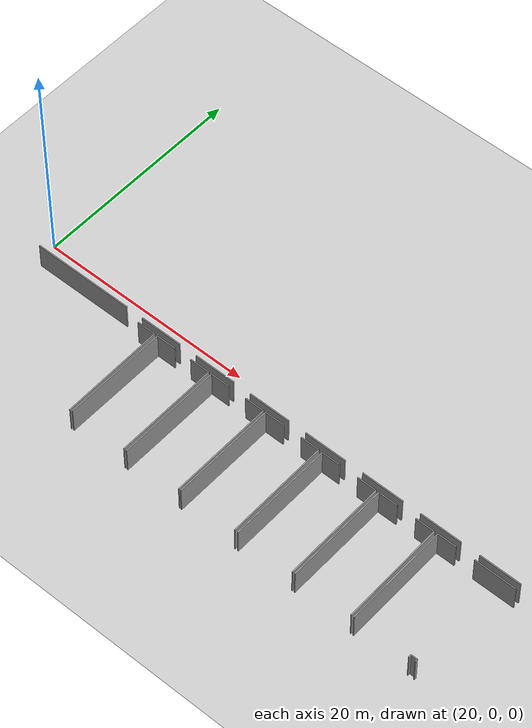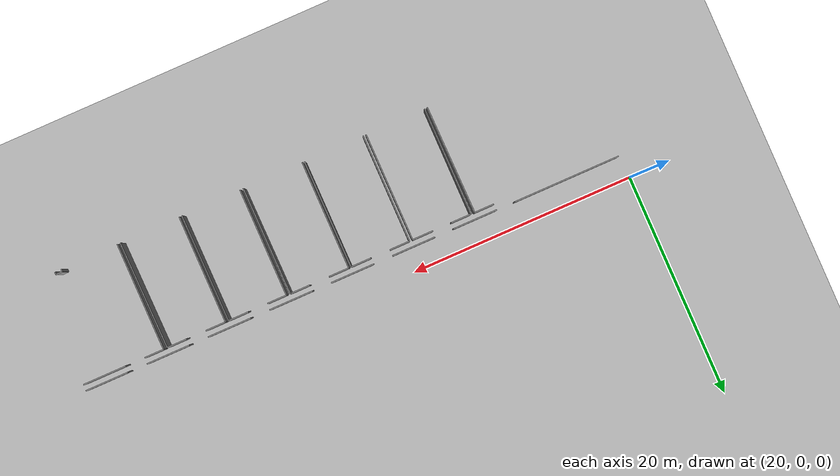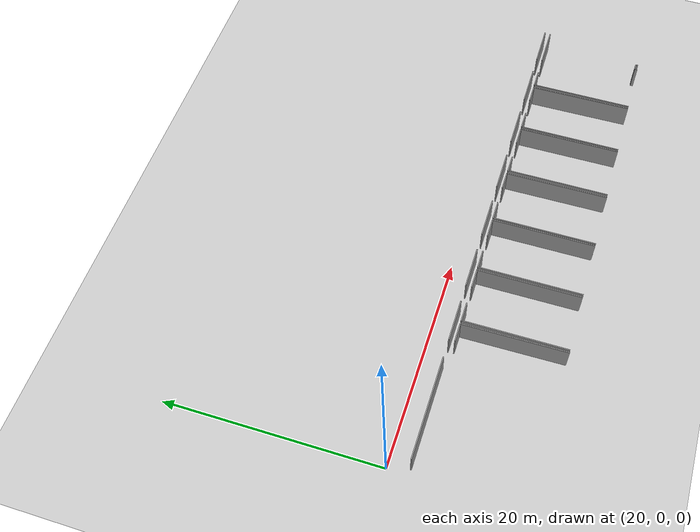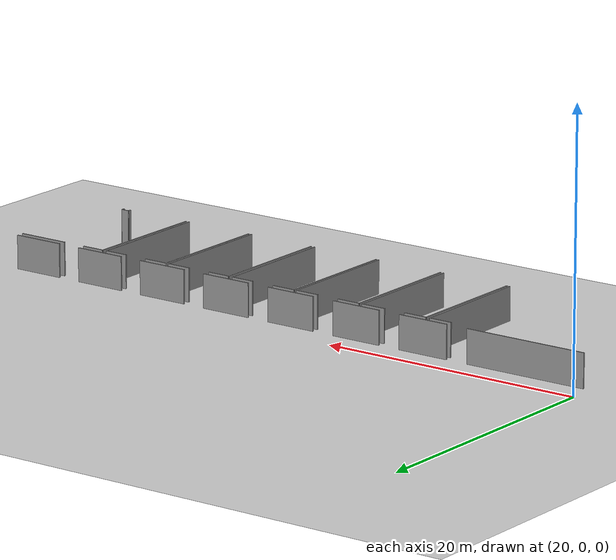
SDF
<sdf version="1.6">
 <world name="default">
  <model name="ground_plane">
   <static>1</static>
   <link name="link">
    <collision name="collision">
     <geometry><plane><normal>0 0 1</normal><size>100 100</size></plane></geometry>
     <surface><friction><ode><mu>100</mu><mu2>50</mu2></ode></friction></surface>
    </collision>
    <visual name="visual">
     <cast_shadows>0</cast_shadows>
     <geometry><plane><normal>0 0 1</normal><size>100 100</size></plane></geometry>
     <material>
      <script><uri>file://media/materials/scripts/gazebo.material</uri><name>Gazebo/Grey</name></script>
     </material>
    </visual>
   </link>
  </model>
  <model name="0510045907_A_40_1_105">
   <static>1</static>
   <link name="Wall_37">
    <collision name="Wall_37_Collision">
     <geometry><box><size>3.85117294607 0.1 2.5</size></box></geometry>
     <pose>1.92558647304 0 1.25 0 0 0</pose>
    </collision>
    <visual name="Wall_37_Visual">
     <pose>1.92558647304 0 1.25 0 0 0</pose>
     <geometry><box><size>3.85117294607 0.1 2.5</size></box></geometry>
     <material>
      <script><uri>file://media/materials/scripts/gazebo.material</uri><name>Gazebo/Grey</name></script>
      <ambient>1 1 1 1</ambient>
     </material>
    </visual>
    <pose>152.759723774 -14.2241291764 0 0 0 3.14159265359</pose>
   </link>
   <link name="Wall_38">
    <collision name="Wall_38_Collision">
     <geometry><box><size>3.86132832335 0.1 2.5</size></box></geometry>
     <pose>1.93066416167 0 1.25 0 0 0</pose>
    </collision>
    <visual name="Wall_38_Visual">
     <pose>1.93066416167 0 1.25 0 0 0</pose>
     <geometry><box><size>3.86132832335 0.1 2.5</size></box></geometry>
     <material>
      <script><uri>file://media/materials/scripts/gazebo.material</uri><name>Gazebo/Grey</name></script>
      <ambient>1 1 1 1</ambient>
     </material>
    </visual>
    <pose>147.171219661 -14.2241291764 0 0 0 3.14159265359</pose>
   </link>
   <link name="Wall_39">
    <collision name="Wall_39_Collision">
     <geometry><box><size>3.90042652585 0.1 2.5</size></box></geometry>
     <pose>1.95021326292 0 1.25 0 0 0</pose>
    </collision>
    <visual name="Wall_39_Visual">
     <pose>1.95021326292 0 1.25 0 0 0</pose>
     <geometry><box><size>3.90042652585 0.1 2.5</size></box></geometry>
     <material>
      <script><uri>file://media/materials/scripts/gazebo.material</uri><name>Gazebo/Grey</name></script>
      <ambient>1 1 1 1</ambient>
     </material>
    </visual>
    <pose>141.612927795 -14.2241291764 0 0 0 3.14159265359</pose>
   </link>
   <link name="Wall_40">
    <collision name="Wall_40_Collision">
     <geometry><box><size>3.91616736062 0.1 2.5</size></box></geometry>
     <pose>1.95808368031 0 1.25 0 0 0</pose>
    </collision>
    <visual name="Wall_40_Visual">
     <pose>1.95808368031 0 1.25 0 0 0</pose>
     <geometry><box><size>3.91616736062 0.1 2.5</size></box></geometry>
     <material>
      <script><uri>file://media/materials/scripts/gazebo.material</uri><name>Gazebo/Grey</name></script>
      <ambient>1 1 1 1</ambient>
     </material>
    </visual>
    <pose>135.995988626 -14.2241291764 0 0 0 3.14159265359</pose>
   </link>
   <link name="Wall_41">
    <collision name="Wall_41_Collision">
     <geometry><box><size>3.89027114857 0.1 2.5</size></box></geometry>
     <pose>1.94513557429 0 1.25 0 0 0</pose>
    </collision>
    <visual name="Wall_41_Visual">
     <pose>1.94513557429 0 1.25 0 0 0</pose>
     <geometry><box><size>3.89027114857 0.1 2.5</size></box></geometry>
     <material>
      <script><uri>file://media/materials/scripts/gazebo.material</uri><name>Gazebo/Grey</name></script>
      <ambient>1 1 1 1</ambient>
     </material>
    </visual>
    <pose>130.376256728 -14.2241291764 0 0 0 3.14159265359</pose>
   </link>
   <link name="Wall_42">
    <collision name="Wall_42_Collision">
     <geometry><box><size>3.87554585153 0.1 2.5</size></box></geometry>
     <pose>1.93777292576 0 1.25 0 0 0</pose>
    </collision>
    <visual name="Wall_42_Visual">
     <pose>1.93777292576 0 1.25 0 0 0</pose>
     <geometry><box><size>3.87554585153 0.1 2.5</size></box></geometry>
     <material>
      <script><uri>file://media/materials/scripts/gazebo.material</uri><name>Gazebo/Grey</name></script>
      <ambient>1 1 1 1</ambient>
     </material>
    </visual>
    <pose>124.787498731 -14.2241291764 0 0 0 3.14159265359</pose>
   </link>
   <link name="Wall_43">
    <collision name="Wall_43_Collision">
     <geometry><box><size>3.93952472834 0.1 2.5</size></box></geometry>
     <pose>1.96976236417 0 1.25 0 0 0</pose>
    </collision>
    <visual name="Wall_43_Visual">
     <pose>1.96976236417 0 1.25 0 0 0</pose>
     <geometry><box><size>3.93952472834 0.1 2.5</size></box></geometry>
     <material>
      <script><uri>file://media/materials/scripts/gazebo.material</uri><name>Gazebo/Grey</name></script>
      <ambient>1 1 1 1</ambient>
     </material>
    </visual>
    <pose>119.219305372 -14.2241291764 0 0 0 3.14159265359</pose>
   </link>
   <link name="Wall_44">
    <collision name="Wall_44_Collision">
     <geometry><box><size>9.44830912968 0.1 2.5</size></box></geometry>
     <pose>4.72415456484 0 1.25 0 0 0</pose>
    </collision>
    <visual name="Wall_44_Visual">
     <pose>4.72415456484 0 1.25 0 0 0</pose>
     <geometry><box><size>9.44830912968 0.1 2.5</size></box></geometry>
     <material>
      <script><uri>file://media/materials/scripts/gazebo.material</uri><name>Gazebo/Grey</name></script>
      <ambient>1 1 1 1</ambient>
     </material>
    </visual>
    <pose>113.61023662 -14.2241291764 0 0 0 3.14159265359</pose>
   </link>
   <link name="Wall_141">
    <collision name="Wall_141_Collision">
     <geometry><box><size>1.74672489083 0.1 2.5</size></box></geometry>
     <pose>0.873362445415 0 1.25 0 0 0</pose>
    </collision>
    <visual name="Wall_141_Visual">
     <pose>0.873362445415 0 1.25 0 0 0</pose>
     <geometry><box><size>1.74672489083 0.1 2.5</size></box></geometry>
     <material>
      <script><uri>file://media/materials/scripts/gazebo.material</uri><name>Gazebo/Grey</name></script>
      <ambient>1 1 1 1</ambient>
     </material>
    </visual>
    <pose>115.316086118 -14.7621102874 0 0 0 0.0</pose>
   </link>
   <link name="Wall_142">
    <collision name="Wall_142_Collision">
     <geometry><box><size>9.63632781156 0.1 2.5</size></box></geometry>
     <pose>4.81816390578 0 1.25 0 0 0</pose>
    </collision>
    <visual name="Wall_142_Visual">
     <pose>4.81816390578 0 1.25 0 0 0</pose>
     <geometry><box><size>9.63632781156 0.1 2.5</size></box></geometry>
     <material>
      <script><uri>file://media/materials/scripts/gazebo.material</uri><name>Gazebo/Grey</name></script>
      <ambient>1 1 1 1</ambient>
     </material>
    </visual>
    <pose>117.062811008 -14.7621102874 0 0 0 -1.56170662615</pose>
   </link>
   <link name="Wall_143">
    <collision name="Wall_143_Collision">
     <geometry><box><size>9.60394028638 0.1 2.5</size></box></geometry>
     <pose>4.80197014319 0 1.25 0 0 0</pose>
    </collision>
    <visual name="Wall_143_Visual">
     <pose>4.80197014319 0 1.25 0 0 0</pose>
     <geometry><box><size>9.60394028638 0.1 2.5</size></box></geometry>
     <material>
      <script><uri>file://media/materials/scripts/gazebo.material</uri><name>Gazebo/Grey</name></script>
      <ambient>1 1 1 1</ambient>
     </material>
    </visual>
    <pose>117.377627704 -24.3721438001 0 0 0 1.57079632679</pose>
   </link>
   <link name="Wall_144">
    <collision name="Wall_144_Collision">
     <geometry><box><size>1.81349649639 0.1 2.5</size></box></geometry>
     <pose>0.906748248197 0 1.25 0 0 0</pose>
    </collision>
    <visual name="Wall_144_Visual">
     <pose>0.906748248197 0 1.25 0 0 0</pose>
     <geometry><box><size>1.81349649639 0.1 2.5</size></box></geometry>
     <material>
      <script><uri>file://media/materials/scripts/gazebo.material</uri><name>Gazebo/Grey</name></script>
      <ambient>1 1 1 1</ambient>
     </material>
    </visual>
    <pose>117.377627704 -14.7682035138 0 0 0 0.0</pose>
   </link>
   <link name="Wall_145">
    <collision name="Wall_145_Collision">
     <geometry><box><size>1.86960495582 0.1 2.5</size></box></geometry>
     <pose>0.934802477912 0 1.25 0 0 0</pose>
    </collision>
    <visual name="Wall_145_Visual">
     <pose>0.934802477912 0 1.25 0 0 0</pose>
     <geometry><box><size>1.86960495582 0.1 2.5</size></box></geometry>
     <material>
      <script><uri>file://media/materials/scripts/gazebo.material</uri><name>Gazebo/Grey</name></script>
      <ambient>1 1 1 1</ambient>
     </material>
    </visual>
    <pose>120.855336651 -14.7682035138 0 0 0 0.0</pose>
   </link>
   <link name="Wall_146">
    <collision name="Wall_146_Collision">
     <geometry><box><size>9.60395490412 0.1 2.5</size></box></geometry>
     <pose>4.80197745206 0 1.25 0 0 0</pose>
    </collision>
    <visual name="Wall_146_Visual">
     <pose>4.80197745206 0 1.25 0 0 0</pose>
     <geometry><box><size>9.60395490412 0.1 2.5</size></box></geometry>
     <material>
      <script><uri>file://media/materials/scripts/gazebo.material</uri><name>Gazebo/Grey</name></script>
      <ambient>1 1 1 1</ambient>
     </material>
    </visual>
    <pose>122.724941607 -14.7682035138 0 0 0 -1.56905158922</pose>
   </link>
   <link name="Wall_147">
    <collision name="Wall_147_Collision">
     <geometry><box><size>9.61460343252 0.1 2.5</size></box></geometry>
     <pose>4.80730171626 0 1.25 0 0 0</pose>
    </collision>
    <visual name="Wall_147_Visual">
     <pose>4.80730171626 0 1.25 0 0 0</pose>
     <geometry><box><size>9.61460343252 0.1 2.5</size></box></geometry>
     <material>
      <script><uri>file://media/materials/scripts/gazebo.material</uri><name>Gazebo/Grey</name></script>
      <ambient>1 1 1 1</ambient>
     </material>
    </visual>
    <pose>123.002183406 -24.3815375241 0 0 0 1.57079632679</pose>
   </link>
   <link name="Wall_148">
    <collision name="Wall_148_Collision">
     <geometry><box><size>1.7848075556 0.1 2.5</size></box></geometry>
     <pose>0.8924037778 0 1.25 0 0 0</pose>
    </collision>
    <visual name="Wall_148_Visual">
     <pose>0.8924037778 0 1.25 0 0 0</pose>
     <geometry><box><size>1.7848075556 0.1 2.5</size></box></geometry>
     <material>
      <script><uri>file://media/materials/scripts/gazebo.material</uri><name>Gazebo/Grey</name></script>
      <ambient>1 1 1 1</ambient>
     </material>
    </visual>
    <pose>123.002183406 -14.7669340916 0 0 0 0.0</pose>
   </link>
   <link name="Wall_149">
    <collision name="Wall_149_Collision">
     <geometry><box><size>1.81451203412 0.1 2.5</size></box></geometry>
     <pose>0.907256017061 0 1.25 0 0 0</pose>
    </collision>
    <visual name="Wall_149_Visual">
     <pose>0.907256017061 0 1.25 0 0 0</pose>
     <geometry><box><size>1.81451203412 0.1 2.5</size></box></geometry>
     <material>
      <script><uri>file://media/materials/scripts/gazebo.material</uri><name>Gazebo/Grey</name></script>
      <ambient>1 1 1 1</ambient>
     </material>
    </visual>
    <pose>126.500456992 -14.7669340916 0 0 0 0.0</pose>
   </link>
   <link name="Wall_150">
    <collision name="Wall_150_Collision">
     <geometry><box><size>9.61461432333 0.1 2.5</size></box></geometry>
     <pose>4.80730716166 0 1.25 0 0 0</pose>
    </collision>
    <visual name="Wall_150_Visual">
     <pose>4.80730716166 0 1.25 0 0 0</pose>
     <geometry><box><size>9.61461432333 0.1 2.5</size></box></geometry>
     <material>
      <script><uri>file://media/materials/scripts/gazebo.material</uri><name>Gazebo/Grey</name></script>
      <ambient>1 1 1 1</ambient>
     </material>
    </visual>
    <pose>128.314969026 -14.7669340916 0 0 0 -1.56929117874</pose>
   </link>
   <link name="Wall_151">
    <collision name="Wall_151_Collision">
     <geometry><box><size>9.63389864933 0.1 2.5</size></box></geometry>
     <pose>4.81694932467 0 1.25 0 0 0</pose>
    </collision>
    <visual name="Wall_151_Visual">
     <pose>4.81694932467 0 1.25 0 0 0</pose>
     <geometry><box><size>9.63389864933 0.1 2.5</size></box></geometry>
     <material>
      <script><uri>file://media/materials/scripts/gazebo.material</uri><name>Gazebo/Grey</name></script>
      <ambient>1 1 1 1</ambient>
     </material>
    </visual>
    <pose>128.532801869 -24.3960089367 0 0 0 1.57079632679</pose>
   </link>
   <link name="Wall_152">
    <collision name="Wall_152_Collision">
     <geometry><box><size>1.80486442571 0.1 2.5</size></box></geometry>
     <pose>0.902432212857 0 1.25 0 0 0</pose>
    </collision>
    <visual name="Wall_152_Visual">
     <pose>0.902432212857 0 1.25 0 0 0</pose>
     <geometry><box><size>1.80486442571 0.1 2.5</size></box></geometry>
     <material>
      <script><uri>file://media/materials/scripts/gazebo.material</uri><name>Gazebo/Grey</name></script>
      <ambient>1 1 1 1</ambient>
     </material>
    </visual>
    <pose>128.532801869 -14.7621102874 0 0 0 0.0</pose>
   </link>
   <link name="Wall_153">
    <collision name="Wall_153_Collision">
     <geometry><box><size>1.75637249924 0.1 2.5</size></box></geometry>
     <pose>0.878186249619 0 1.25 0 0 0</pose>
    </collision>
    <visual name="Wall_153_Visual">
     <pose>0.878186249619 0 1.25 0 0 0</pose>
     <geometry><box><size>1.75637249924 0.1 2.5</size></box></geometry>
     <material>
      <script><uri>file://media/materials/scripts/gazebo.material</uri><name>Gazebo/Grey</name></script>
      <ambient>1 1 1 1</ambient>
     </material>
    </visual>
    <pose>132.10470194 -14.7621102874 0 0 0 0.0</pose>
   </link>
   <link name="Wall_154">
    <collision name="Wall_154_Collision">
     <geometry><box><size>9.63406800561 0.1 2.5</size></box></geometry>
     <pose>4.8170340028 0 1.25 0 0 0</pose>
    </collision>
    <visual name="Wall_154_Visual">
     <pose>4.8170340028 0 1.25 0 0 0</pose>
     <geometry><box><size>9.63406800561 0.1 2.5</size></box></geometry>
     <material>
      <script><uri>file://media/materials/scripts/gazebo.material</uri><name>Gazebo/Grey</name></script>
      <ambient>1 1 1 1</ambient>
     </material>
    </visual>
    <pose>133.861074439 -14.7621102874 0 0 0 -1.56486691755</pose>
   </link>
   <link name="Wall_155">
    <collision name="Wall_155_Collision">
     <geometry><box><size>9.60495582411 0.1 2.5</size></box></geometry>
     <pose>4.80247791205 0 1.25 0 0 0</pose>
    </collision>
    <visual name="Wall_155_Visual">
     <pose>4.80247791205 0 1.25 0 0 0</pose>
     <geometry><box><size>9.60495582411 0.1 2.5</size></box></geometry>
     <material>
      <script><uri>file://media/materials/scripts/gazebo.material</uri><name>Gazebo/Grey</name></script>
      <ambient>1 1 1 1</ambient>
     </material>
    </visual>
    <pose>134.214227684 -24.3889001726 0 0 0 1.57079632679</pose>
   </link>
   <link name="Wall_156">
    <collision name="Wall_156_Collision">
     <geometry><box><size>1.72133644765 0.1 2.5</size></box></geometry>
     <pose>0.860668223825 0 1.25 0 0 0</pose>
    </collision>
    <visual name="Wall_156_Visual">
     <pose>0.860668223825 0 1.25 0 0 0</pose>
     <geometry><box><size>1.72133644765 0.1 2.5</size></box></geometry>
     <material>
      <script><uri>file://media/materials/scripts/gazebo.material</uri><name>Gazebo/Grey</name></script>
      <ambient>1 1 1 1</ambient>
     </material>
    </visual>
    <pose>134.214227684 -14.7839443485 0 0 0 0.0</pose>
   </link>
   <link name="Wall_157">
    <collision name="Wall_157_Collision">
     <geometry><box><size>1.80283335026 0.1 2.5</size></box></geometry>
     <pose>0.901416675129 0 1.25 0 0 0</pose>
    </collision>
    <visual name="Wall_157_Visual">
     <pose>0.901416675129 0 1.25 0 0 0</pose>
     <geometry><box><size>1.80283335026 0.1 2.5</size></box></geometry>
     <material>
      <script><uri>file://media/materials/scripts/gazebo.material</uri><name>Gazebo/Grey</name></script>
      <ambient>1 1 1 1</ambient>
     </material>
    </visual>
    <pose>137.69879151 -14.7839443485 0 0 0 0.0</pose>
   </link>
   <link name="Wall_158">
    <collision name="Wall_158_Collision">
     <geometry><box><size>9.60501428875 0.1 2.5</size></box></geometry>
     <pose>4.80250714438 0 1.25 0 0 0</pose>
    </collision>
    <visual name="Wall_158_Visual">
     <pose>4.80250714438 0 1.25 0 0 0</pose>
     <geometry><box><size>9.60501428875 0.1 2.5</size></box></geometry>
     <material>
      <script><uri>file://media/materials/scripts/gazebo.material</uri><name>Gazebo/Grey</name></script>
      <ambient>1 1 1 1</ambient>
     </material>
    </visual>
    <pose>139.50162486 -14.7839443485 0 0 0 -1.56730723121</pose>
   </link>
   <link name="Wall_159">
    <collision name="Wall_159_Collision">
     <geometry><box><size>9.58566060729 0.1 2.5</size></box></geometry>
     <pose>4.79283030365 0 1.25 0 0 0</pose>
    </collision>
    <visual name="Wall_159_Visual">
     <pose>4.79283030365 0 1.25 0 0 0</pose>
     <geometry><box><size>9.58566060729 0.1 2.5</size></box></geometry>
     <material>
      <script><uri>file://media/materials/scripts/gazebo.material</uri><name>Gazebo/Grey</name></script>
      <ambient>1 1 1 1</ambient>
     </material>
    </visual>
    <pose>139.767949629 -24.3721438001 0 0 0 1.57079632679</pose>
   </link>
   <link name="Wall_160">
    <collision name="Wall_160_Collision">
     <geometry><box><size>1.80004062151 0.1 2.5</size></box></geometry>
     <pose>0.900020310755 0 1.25 0 0 0</pose>
    </collision>
    <visual name="Wall_160_Visual">
     <pose>0.900020310755 0 1.25 0 0 0</pose>
     <geometry><box><size>1.80004062151 0.1 2.5</size></box></geometry>
     <material>
      <script><uri>file://media/materials/scripts/gazebo.material</uri><name>Gazebo/Grey</name></script>
      <ambient>1 1 1 1</ambient>
     </material>
    </visual>
    <pose>139.767949629 -14.7864831929 0 0 0 0.0</pose>
   </link>
   <link name="Wall_161">
    <collision name="Wall_161_Collision">
     <geometry><box><size>1.75662638367 0.1 2.5</size></box></geometry>
     <pose>0.878313191835 0 1.25 0 0 0</pose>
    </collision>
    <visual name="Wall_161_Visual">
     <pose>0.878313191835 0 1.25 0 0 0</pose>
     <geometry><box><size>1.75662638367 0.1 2.5</size></box></geometry>
     <material>
      <script><uri>file://media/materials/scripts/gazebo.material</uri><name>Gazebo/Grey</name></script>
      <ambient>1 1 1 1</ambient>
     </material>
    </visual>
    <pose>143.32436275 -14.7864831929 0 0 0 0.0</pose>
   </link>
   <link name="Wall_162">
    <collision name="Wall_162_Collision">
     <geometry><box><size>9.5859920984 0.1 2.5</size></box></geometry>
     <pose>4.7929960492 0 1.25 0 0 0</pose>
    </collision>
    <visual name="Wall_162_Visual">
     <pose>4.7929960492 0 1.25 0 0 0</pose>
     <geometry><box><size>9.5859920984 0.1 2.5</size></box></geometry>
     <material>
      <script><uri>file://media/materials/scripts/gazebo.material</uri><name>Gazebo/Grey</name></script>
      <ambient>1 1 1 1</ambient>
     </material>
    </visual>
    <pose>145.080989134 -14.7864831929 0 0 0 -1.56247995957</pose>
   </link>
   <link name="Wall_163">
    <collision name="Wall_163_Collision">
     <geometry><box><size>0.218340611354 0.1 2.5</size></box></geometry>
     <pose>0.109170305677 0 1.25 0 0 0</pose>
    </collision>
    <visual name="Wall_163_Visual">
     <pose>0.109170305677 0 1.25 0 0 0</pose>
     <geometry><box><size>0.218340611354 0.1 2.5</size></box></geometry>
     <material>
      <script><uri>file://media/materials/scripts/gazebo.material</uri><name>Gazebo/Grey</name></script>
      <ambient>1 1 1 1</ambient>
     </material>
    </visual>
    <pose>151.119630344 -24.3386310551 0 0 0 1.57079632679</pose>
   </link>
   <link name="Wall_164">
    <collision name="Wall_164_Collision">
     <geometry><box><size>0.575048238042 0.1 2.5</size></box></geometry>
     <pose>0.287524119021 0 1.25 0 0 0</pose>
    </collision>
    <visual name="Wall_164_Visual">
     <pose>0.287524119021 0 1.25 0 0 0</pose>
     <geometry><box><size>0.575048238042 0.1 2.5</size></box></geometry>
     <material>
      <script><uri>file://media/materials/scripts/gazebo.material</uri><name>Gazebo/Grey</name></script>
      <ambient>1 1 1 1</ambient>
     </material>
    </visual>
    <pose>151.119630344 -24.1202904438 0 0 0 3.14159265359</pose>
   </link>
   <link name="Wall_165">
    <collision name="Wall_165_Collision">
     <geometry><box><size>0.249568396466 0.1 2.5</size></box></geometry>
     <pose>0.124784198233 0 1.25 0 0 0</pose>
    </collision>
    <visual name="Wall_165_Visual">
     <pose>0.124784198233 0 1.25 0 0 0</pose>
     <geometry><box><size>0.249568396466 0.1 2.5</size></box></geometry>
     <material>
      <script><uri>file://media/materials/scripts/gazebo.material</uri><name>Gazebo/Grey</name></script>
      <ambient>1 1 1 1</ambient>
     </material>
    </visual>
    <pose>150.544582106 -24.1202904438 0 0 0 -1.57079632679</pose>
   </link>
   <link name="Wall_166">
    <collision name="Wall_166_Collision">
     <geometry><box><size>9.59632375343 0.1 2.5</size></box></geometry>
     <pose>4.79816187671 0 1.25 0 0 0</pose>
    </collision>
    <visual name="Wall_166_Visual">
     <pose>4.79816187671 0 1.25 0 0 0</pose>
     <geometry><box><size>9.59632375343 0.1 2.5</size></box></geometry>
     <material>
      <script><uri>file://media/materials/scripts/gazebo.material</uri><name>Gazebo/Grey</name></script>
      <ambient>1 1 1 1</ambient>
     </material>
    </visual>
    <pose>145.419417081 -24.3698588403 0 0 0 1.57079632679</pose>
   </link>
   <link name="Wall_167">
    <collision name="Wall_167_Collision">
     <geometry><box><size>1.7297146339 0.1 2.5</size></box></geometry>
     <pose>0.864857316949 0 1.25 0 0 0</pose>
    </collision>
    <visual name="Wall_167_Visual">
     <pose>0.864857316949 0 1.25 0 0 0</pose>
     <geometry><box><size>1.7297146339 0.1 2.5</size></box></geometry>
     <material>
      <script><uri>file://media/materials/scripts/gazebo.material</uri><name>Gazebo/Grey</name></script>
      <ambient>1 1 1 1</ambient>
     </material>
    </visual>
    <pose>145.419417081 -14.7735350868 0 0 0 0.0</pose>
   </link>
   <link name="Wall_168">
    <collision name="Wall_168_Collision">
     <geometry><box><size>3.86107443892 0.1 2.5</size></box></geometry>
     <pose>1.93053721946 0 1.25 0 0 0</pose>
    </collision>
    <visual name="Wall_168_Visual">
     <pose>1.93053721946 0 1.25 0 0 0</pose>
     <geometry><box><size>3.86107443892 0.1 2.5</size></box></geometry>
     <material>
      <script><uri>file://media/materials/scripts/gazebo.material</uri><name>Gazebo/Grey</name></script>
      <ambient>1 1 1 1</ambient>
     </material>
    </visual>
    <pose>148.884177922 -14.7735350868 0 0 0 0.0</pose>
   </link>
   <pose>-83.65 12.2252056464 0 0 0 0</pose>
  </model>
 </world>
</sdf>
